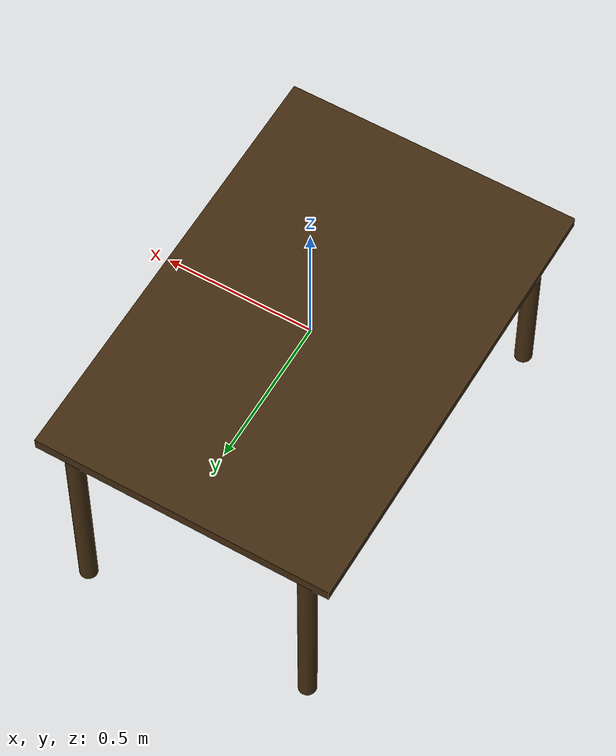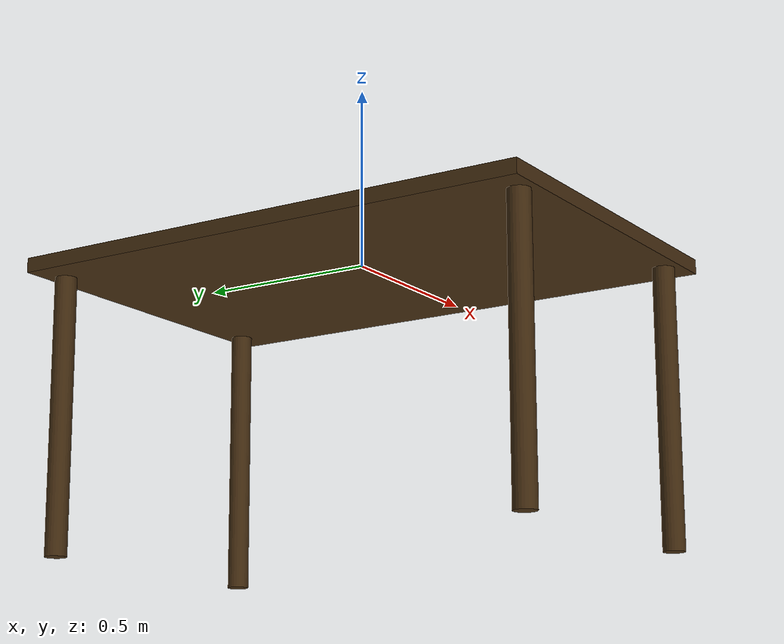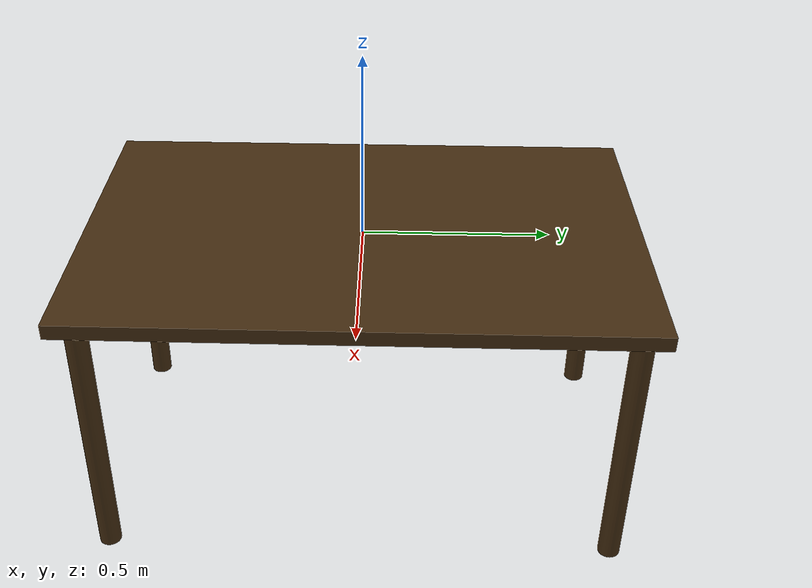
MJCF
<mujoco model="longtable">
  <compiler meshdir="assets" texturedir="assets"/>

  <asset>
    <material name="table_material" rgba="0.266754 0.174546 0.0644028 1" shininess="0.5"/>
    <mesh name="longtable_mesh" file="longtable.stl"/>
  </asset>

  <worldbody>
    <body name="longtable" pos="0 0 0.0">

      <!-- Physical collision box -->
      <geom name="table_box"
            type="box"
            size="0.5 0.75 0.02"
            material="table_material"
            condim="6"
            priority="1"
            friction="0.8 0.01 0.003"
            density="500"/>

      <!-- Optional table legs (static geometry, could be added as separate geoms) -->
      <geom type="cylinder" size="0.03 0.39" pos="0.4 -0.7 -0.39" material="table_material" />
      <geom type="cylinder" size="0.03 0.39" pos="-0.4 -0.7 -0.39" material="table_material" />
      <geom type="cylinder" size="0.03 0.39" pos="0.4 0.7 -0.39" material="table_material" />
      <geom type="cylinder" size="0.03 0.39" pos="-0.4 0.7 -0.39" material="table_material" />

      <!-- Optional visual mesh for realism -->
      <!-- Flip mesh upright: quat="1 0 0 0" is 180° around X -->
      <!-- Position z=0 to align top surface with table_box -->

      <inertial pos="0 0 0" mass="5.0" diaginertia="0.1 0.1 0.1"/>
    </body>
  </worldbody>
</mujoco>
